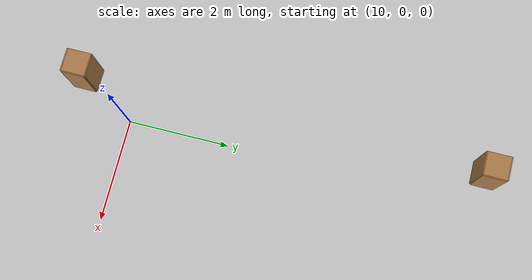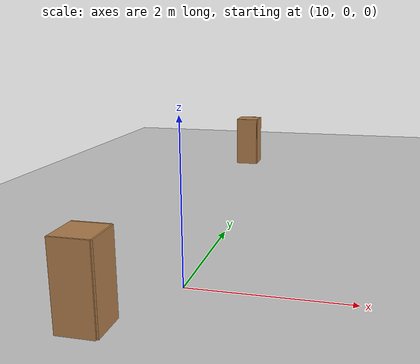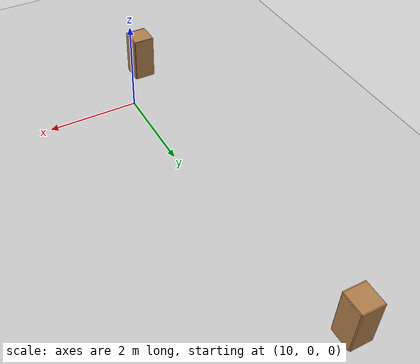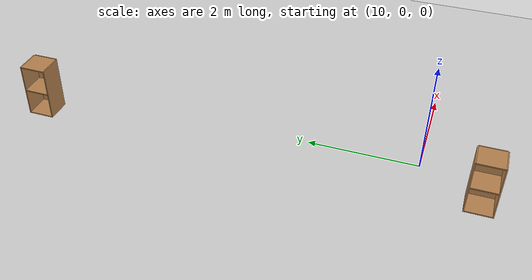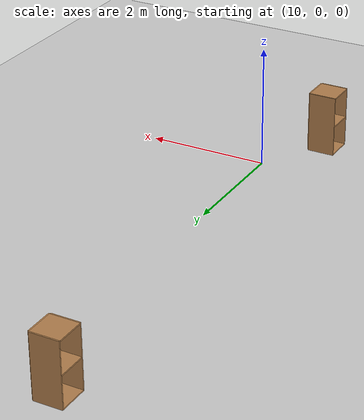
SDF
<sdf version="1.4">
 <world name="default">
  <include><uri>model://sun</uri></include>
  <include><uri>model://ground_plane</uri></include>
  <model name="cabinet_clone">
   <static>1</static>
   <link name="cabinet_bottom_plate">
    <inertial>
     <pose>0 0 -1 0 -0 0</pose>
     <inertia><ixx>2.05</ixx><ixy>0</ixy><ixz>0</ixz><iyy>2.05</iyy><iyz>0</iyz><izz>2.05</izz></inertia>
     <mass>25</mass>
    </inertial>
    <collision name="cabinet_bottom_plate_geom">
     <pose>0 0 0.01 0 -0 0</pose>
     <geometry><box><size>0.45 0.45 0.02</size></box></geometry>
    </collision>
    <visual name="cabinet_bottom_plate_geom_visual">
     <pose>0 0 0.01 0 -0 0</pose>
     <geometry><box><size>0.45 0.45 0.02</size></box></geometry>
     <material>
      <script><uri>file://media/materials/scripts/gazebo.material</uri><name>Gazebo/Wood</name></script>
     </material>
    </visual>
    <collision name="cabinet_bottom_plate_geom_cabinet_back_plate">
     <pose>0.235 0 0.51 0 -0 0</pose>
     <geometry><box><size>0.02 0.45 1.02</size></box></geometry>
    </collision>
    <visual name="cabinet_bottom_plate_geom_cabinet_back_plate_visual">
     <pose>0.235 0 0.51 0 -0 0</pose>
     <geometry><box><size>0.02 0.45 1.02</size></box></geometry>
     <material>
      <script><uri>file://media/materials/scripts/gazebo.material</uri><name>Gazebo/Wood</name></script>
     </material>
    </visual>
    <collision name="cabinet_bottom_plate_geom_cabinet_left_plate">
     <pose>0 0.235 0.51 0 -0 0</pose>
     <geometry><box><size>0.45 0.02 1.02</size></box></geometry>
    </collision>
    <visual name="cabinet_bottom_plate_geom_cabinet_left_plate_visual">
     <pose>0 0.235 0.51 0 -0 0</pose>
     <geometry><box><size>0.45 0.02 1.02</size></box></geometry>
     <material>
      <script><uri>file://media/materials/scripts/gazebo.material</uri><name>Gazebo/Wood</name></script>
     </material>
    </visual>
    <collision name="cabinet_bottom_plate_geom_cabinet_middle_plate">
     <pose>0 0 0.51 0 -0 0</pose>
     <geometry><box><size>0.45 0.45 0.02</size></box></geometry>
    </collision>
    <visual name="cabinet_bottom_plate_geom_cabinet_middle_plate_visual">
     <pose>0 0 0.51 0 -0 0</pose>
     <geometry><box><size>0.45 0.45 0.02</size></box></geometry>
     <material>
      <script><uri>file://media/materials/scripts/gazebo.material</uri><name>Gazebo/Wood</name></script>
     </material>
    </visual>
    <collision name="cabinet_bottom_plate_geom_cabinet_right_plate">
     <pose>0 -0.235 0.51 0 -0 0</pose>
     <geometry><box><size>0.45 0.02 1.02</size></box></geometry>
    </collision>
    <visual name="cabinet_bottom_plate_geom_cabinet_right_plate_visual">
     <pose>0 -0.235 0.51 0 -0 0</pose>
     <geometry><box><size>0.45 0.02 1.02</size></box></geometry>
     <material>
      <script><uri>file://media/materials/scripts/gazebo.material</uri><name>Gazebo/Wood</name></script>
     </material>
    </visual>
    <collision name="cabinet_bottom_plate_geom_cabinet_top_plate">
     <pose>0 0 1.01 0 -0 0</pose>
     <geometry><box><size>0.45 0.45 0.02</size></box></geometry>
    </collision>
    <visual name="cabinet_bottom_plate_geom_cabinet_top_plate_visual">
     <pose>0 0 1.01 0 -0 0</pose>
     <geometry><box><size>0.45 0.45 0.02</size></box></geometry>
     <material>
      <script><uri>file://media/materials/scripts/gazebo.material</uri><name>Gazebo/Wood</name></script>
     </material>
    </visual>
   </link>
   <pose>9.3318 -1.06285 0 0 -0 0</pose>
  </model>
  <model name="cabinet_clone_clone_0">
   <static>1</static>
   <link name="cabinet_bottom_plate">
    <inertial>
     <pose>0 0 -1 0 -0 0</pose>
     <inertia><ixx>2.05</ixx><ixy>0</ixy><ixz>0</ixz><iyy>2.05</iyy><iyz>0</iyz><izz>2.05</izz></inertia>
     <mass>25</mass>
    </inertial>
    <collision name="cabinet_bottom_plate_geom">
     <pose>0 0 0.01 0 -0 0</pose>
     <geometry><box><size>0.45 0.45 0.02</size></box></geometry>
    </collision>
    <visual name="cabinet_bottom_plate_geom_visual">
     <pose>0 0 0.01 0 -0 0</pose>
     <geometry><box><size>0.45 0.45 0.02</size></box></geometry>
     <material>
      <script><uri>file://media/materials/scripts/gazebo.material</uri><name>Gazebo/Wood</name></script>
     </material>
    </visual>
    <collision name="cabinet_bottom_plate_geom_cabinet_back_plate">
     <pose>0.235 0 0.51 0 -0 0</pose>
     <geometry><box><size>0.02 0.45 1.02</size></box></geometry>
    </collision>
    <visual name="cabinet_bottom_plate_geom_cabinet_back_plate_visual">
     <pose>0.235 0 0.51 0 -0 0</pose>
     <geometry><box><size>0.02 0.45 1.02</size></box></geometry>
     <material>
      <script><uri>file://media/materials/scripts/gazebo.material</uri><name>Gazebo/Wood</name></script>
     </material>
    </visual>
    <collision name="cabinet_bottom_plate_geom_cabinet_left_plate">
     <pose>0 0.235 0.51 0 -0 0</pose>
     <geometry><box><size>0.45 0.02 1.02</size></box></geometry>
    </collision>
    <visual name="cabinet_bottom_plate_geom_cabinet_left_plate_visual">
     <pose>0 0.235 0.51 0 -0 0</pose>
     <geometry><box><size>0.45 0.02 1.02</size></box></geometry>
     <material>
      <script><uri>file://media/materials/scripts/gazebo.material</uri><name>Gazebo/Wood</name></script>
     </material>
    </visual>
    <collision name="cabinet_bottom_plate_geom_cabinet_middle_plate">
     <pose>0 0 0.51 0 -0 0</pose>
     <geometry><box><size>0.45 0.45 0.02</size></box></geometry>
    </collision>
    <visual name="cabinet_bottom_plate_geom_cabinet_middle_plate_visual">
     <pose>0 0 0.51 0 -0 0</pose>
     <geometry><box><size>0.45 0.45 0.02</size></box></geometry>
     <material>
      <script><uri>file://media/materials/scripts/gazebo.material</uri><name>Gazebo/Wood</name></script>
     </material>
    </visual>
    <collision name="cabinet_bottom_plate_geom_cabinet_right_plate">
     <pose>0 -0.235 0.51 0 -0 0</pose>
     <geometry><box><size>0.45 0.02 1.02</size></box></geometry>
    </collision>
    <visual name="cabinet_bottom_plate_geom_cabinet_right_plate_visual">
     <pose>0 -0.235 0.51 0 -0 0</pose>
     <geometry><box><size>0.45 0.02 1.02</size></box></geometry>
     <material>
      <script><uri>file://media/materials/scripts/gazebo.material</uri><name>Gazebo/Wood</name></script>
     </material>
    </visual>
    <collision name="cabinet_bottom_plate_geom_cabinet_top_plate">
     <pose>0 0 1.01 0 -0 0</pose>
     <geometry><box><size>0.45 0.45 0.02</size></box></geometry>
    </collision>
    <visual name="cabinet_bottom_plate_geom_cabinet_top_plate_visual">
     <pose>0 0 1.01 0 -0 0</pose>
     <geometry><box><size>0.45 0.45 0.02</size></box></geometry>
     <material>
      <script><uri>file://media/materials/scripts/gazebo.material</uri><name>Gazebo/Wood</name></script>
     </material>
    </visual>
   </link>
   <pose>9.32944 7.00096 0 0 -0 0</pose>
  </model>
 </world>
</sdf>
